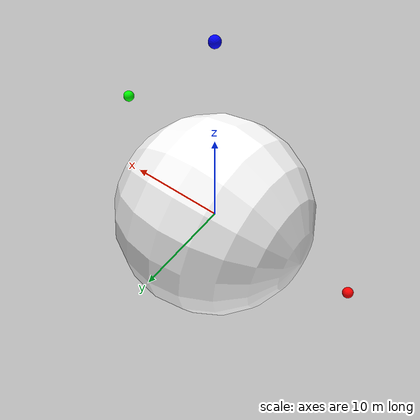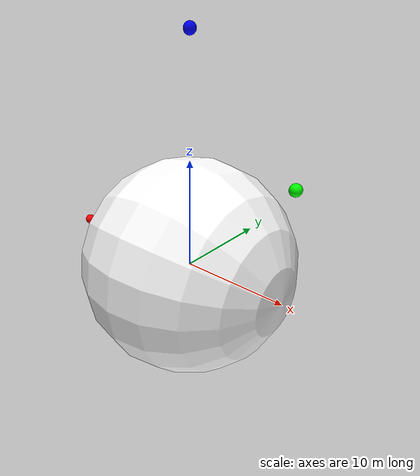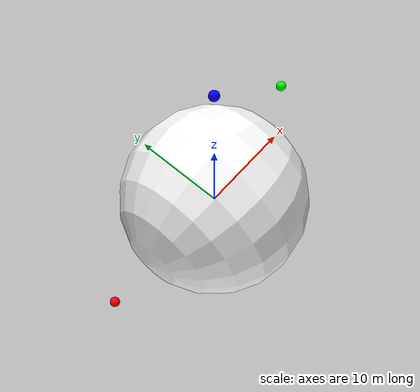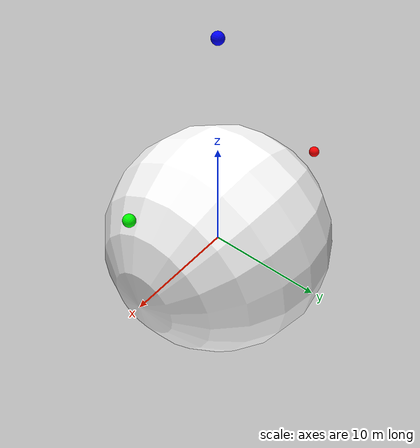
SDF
<sdf version="1.9">
 <world name="earth">
  <physics name="1ms" type="ignore">
   <max_step_size>0.001</max_step_size>
   <real_time_factor>1.0</real_time_factor>
  </physics>
  <plugin filename="gz-sim-physics-system" name="gz::sim::systems::Physics"/>
  <plugin filename="gz-sim-sensors-system" name="gz::sim::systems::Sensors">
   <render_engine>ogre2</render_engine>
  </plugin>
  <plugin filename="gz-sim-user-commands-system" name="gz::sim::systems::UserCommands"/>
  <plugin filename="gz-sim-scene-broadcaster-system" name="gz::sim::systems::SceneBroadcaster"/>
  <plugin filename="gz-sim-imu-system" name="gz::sim::systems::Imu">
   <gravity_source>earth</gravity_source>
   <gravity_expo>-2.0</gravity_expo>
  </plugin>
  <plugin filename="GravityPlugin" name="GravityPlugin">
   <debug>0</debug>
   <gravity_source>earth</gravity_source>
   <gravity_expo>-2.0</gravity_expo>
  </plugin>
  <gravity>0 0 0</gravity>
  <scene><ambient>1.0 1.0 1.0</ambient><background>0.8 0.8 0.8</background></scene>
  <light type="directional" name="sun">
   <pose>0 0 1000 0 0 0</pose>
   <diffuse>0.8 0.8 0.8 1</diffuse>
   <specular>0.8 0.8 0.8 1</specular>
   <attenuation>
    <range>1000</range>
    <constant>0.9</constant>
    <linear>0.01</linear>
    <quadratic>0.001</quadratic>
   </attenuation>
   <direction>-0.5 0.1 -0.9</direction>
  </light>
  <model name="earth">
   <static>0</static>
   <link name="earth">
    <gravity>0</gravity>
    <inertial>
     <mass>1.50E+13</mass>
     <inertia>
      <ixx>5.99314E+14</ixx>
      <ixy>0</ixy>
      <ixz>0</ixz>
      <iyy>5.99314E+14</iyy>
      <iyz>0</iyz>
      <izz>5.99314E+14</izz>
     </inertia>
    </inertial>
    <collision name="collision">
     <pose degrees="true">0 0 0 90 0 -90</pose>
     <geometry><sphere><radius>10</radius></sphere></geometry>
     <surface><friction><ode><mu>1.0</mu><mu2>1.0</mu2></ode></friction></surface>
    </collision>
    <visual name="visual">
     <pose degrees="true">0 0 0 90 0 -90</pose>
     <geometry><sphere><radius>10</radius></sphere></geometry>
     <material>
      <ambient>1 1 1</ambient>
      <diffuse>1 1 1</diffuse>
      <specular>0.01 0.01 0.01</specular>
      <pbr>
       <metal>
        <albedo_map>8k_earth_daymap.jpg</albedo_map>
        <normal_map>8k_earth_normal_map.tif</normal_map>
        <metalness>0.1</metalness>
        <roughness>0.8</roughness>
       </metal>
      </pbr>
     </material>
    </visual>
   </link>
   <plugin filename="gz-sim-velocity-control-system" name="gz::sim::systems::VelocityControl">
    <initial_angular>0 0 0.0</initial_angular>
   </plugin>
  </model>
  <model name="satellite1">
   <pose>-15 0 0 0 0 0</pose>
   <link name="base_link">
    <inertial>
     <mass>1.0</mass>
     <inertia><ixx>0.1</ixx><ixy>0</ixy><ixz>0</ixz><iyy>0.1</iyy><iyz>0</iyz><izz>0.1</izz></inertia>
    </inertial>
    <collision name="collision">
     <pose degrees="true">0 0 0 90 0 0</pose>
     <geometry><sphere><radius>0.5</radius></sphere></geometry>
    </collision>
    <visual name="visual">
     <pose degrees="true">0 0 0 90 0 0</pose>
     <geometry><sphere><radius>0.5</radius></sphere></geometry>
     <material>
      <ambient>1 0 0</ambient>
      <diffuse>1 0 0</diffuse>
      <specular>0.01 0.01 0.01</specular>
      <pbr>
       <metal><albedo_map>2k_moon.jpg</albedo_map><metalness>0.1</metalness><roughness>0.8</roughness></metal>
      </pbr>
     </material>
    </visual>
   </link>
   <plugin filename="InitialVelocityPlugin" name="InitialVelocityPlugin">
    <debug>0</debug>
    <linear>0 8.164965809 0</linear>
    <link>base_link</link>
    <p_gain>50</p_gain>
    <i_gain>1</i_gain>
    <d_gain>0</d_gain>
    <i_max>10</i_max>
    <i_min>-10</i_min>
    <cmd_min>-1000</cmd_min>
    <cmd_max>1000</cmd_max>
   </plugin>
  </model>
  <model name="satellite2">
   <pose>0 0 20 0 0 0</pose>
   <link name="base_link">
    <inertial>
     <mass>1.0</mass>
     <inertia><ixx>0.1</ixx><ixy>0</ixy><ixz>0</ixz><iyy>0.1</iyy><iyz>0</iyz><izz>0.1</izz></inertia>
    </inertial>
    <collision name="collision">
     <pose degrees="true">0 0 0 90 0 0</pose>
     <geometry><sphere><radius>0.5</radius></sphere></geometry>
    </collision>
    <visual name="visual">
     <pose degrees="true">0 0 0 90 0 0</pose>
     <geometry><sphere><radius>0.5</radius></sphere></geometry>
     <material>
      <ambient>0 0 1</ambient>
      <diffuse>0 0 1</diffuse>
      <specular>0.01 0.01 0.01</specular>
      <pbr>
       <metal><albedo_map>2k_moon.jpg</albedo_map><metalness>0.1</metalness><roughness>0.8</roughness></metal>
      </pbr>
     </material>
    </visual>
   </link>
   <plugin filename="InitialVelocityPlugin" name="InitialVelocityPlugin">
    <debug>0</debug>
    <linear>-7.071067812 0 0</linear>
    <link>base_link</link>
    <p_gain>50</p_gain>
    <i_gain>1</i_gain>
    <d_gain>0</d_gain>
    <i_max>10</i_max>
    <i_min>-10</i_min>
    <cmd_min>-1000</cmd_min>
    <cmd_max>1000</cmd_max>
   </plugin>
  </model>
  <model name="satellite3">
   <pose>10 0 10 0 0 0</pose>
   <link name="base_link">
    <inertial>
     <mass>1.0</mass>
     <inertia><ixx>0.1</ixx><ixy>0</ixy><ixz>0</ixz><iyy>0.1</iyy><iyz>0</iyz><izz>0.1</izz></inertia>
    </inertial>
    <collision name="collision">
     <pose degrees="true">0 0 0 90 0 0</pose>
     <geometry><sphere><radius>0.5</radius></sphere></geometry>
    </collision>
    <visual name="visual">
     <pose degrees="true">0 0 0 90 0 0</pose>
     <geometry><sphere><radius>0.5</radius></sphere></geometry>
     <material>
      <ambient>0 1 0</ambient>
      <diffuse>0 1 0</diffuse>
      <specular>0.01 0.01 0.01</specular>
      <pbr>
       <metal><albedo_map>2k_moon.jpg</albedo_map><metalness>0.1</metalness><roughness>0.8</roughness></metal>
      </pbr>
     </material>
    </visual>
   </link>
   <plugin filename="InitialVelocityPlugin" name="InitialVelocityPlugin">
    <debug>0</debug>
    <linear>0 10.0 0</linear>
    <link>base_link</link>
    <p_gain>50</p_gain>
    <i_gain>1</i_gain>
    <d_gain>0</d_gain>
    <i_max>10</i_max>
    <i_min>-10</i_min>
    <cmd_min>-1000</cmd_min>
    <cmd_max>1000</cmd_max>
   </plugin>
  </model>
 </world>
</sdf>
